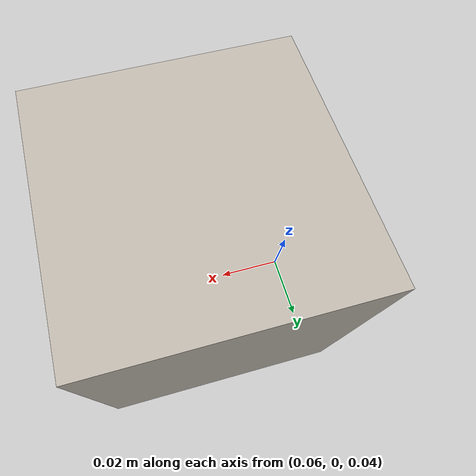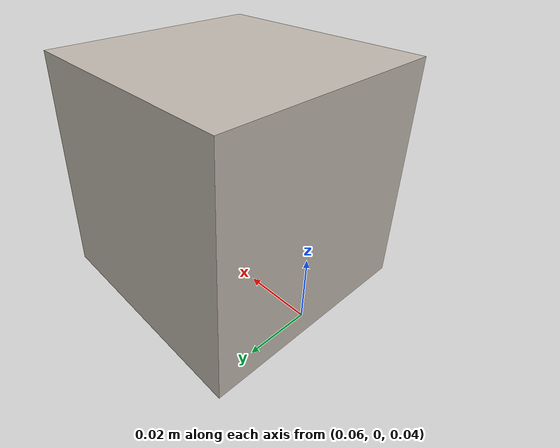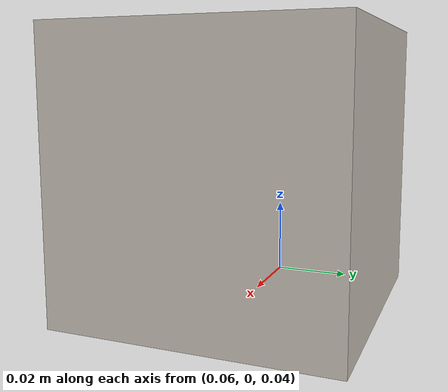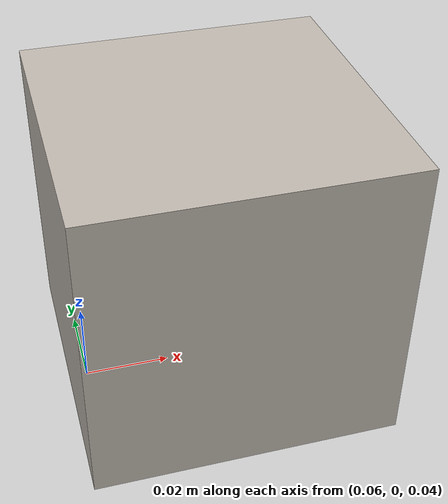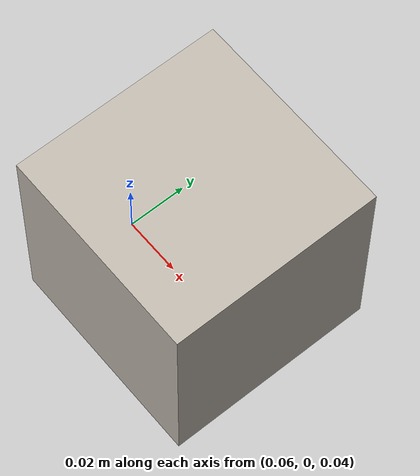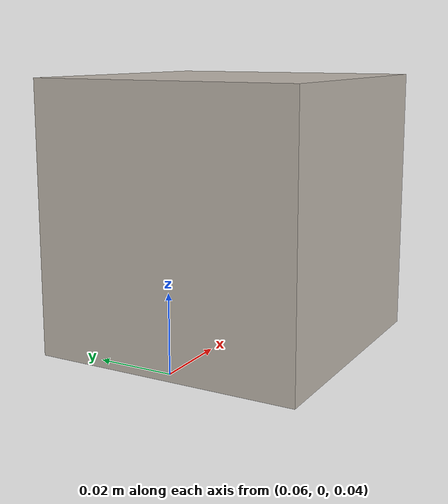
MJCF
<mujoco>
  <asset>
    <texture name="cube" type="cube"
             fileup="../assets/cube_qwerty/fileup.png" fileback="../assets/cube_qwerty/fileback.png"
             filedown="../assets/cube_qwerty/filedown.png" filefront="../assets/cube_qwerty/filefront.png"
             fileleft="../assets/cube_qwerty/fileleft.png" fileright="../assets/cube_qwerty/fileright.png"/>
    <material name="cube" texture="cube"/>
    <texture name="graycube" type="cube" fileup="assets/grayup.png"
             fileback="assets/grayback.png" filedown="assets/graydown.png"
             filefront="assets/grayfront.png" fileleft="assets/grayleft.png"
             fileright="assets/grayright.png"/>
    <material name="graycube" texture="graycube"/>
  </asset>
  <worldbody>
    <light pos="0 0 1"/>
    <body name="cube" pos="0.090696023 0.0 0.075" quat="1 0 0 0">
      <freejoint/>
      <geom name="cube" type="box" size=".035 .035 .035" mass=".108" material="cube" friction="0.3 0.05 0.01" priority="0" condim="6"/>
    </body>
  </worldbody>

  <sensor>
    <framepos name="trace0" objtype="body" objname="cube"/>
    <framelinvel name="cube_linear_velocity" objtype="body" objname="cube"/>
    <frameangvel name="cube_angular_velocity" objtype="body" objname="cube"/>
    <framepos name="cube_position" objtype="body" objname="cube"/>
    <framequat name="cube_orientation" objtype="body" objname="cube"/>
  </sensor>
</mujoco>
